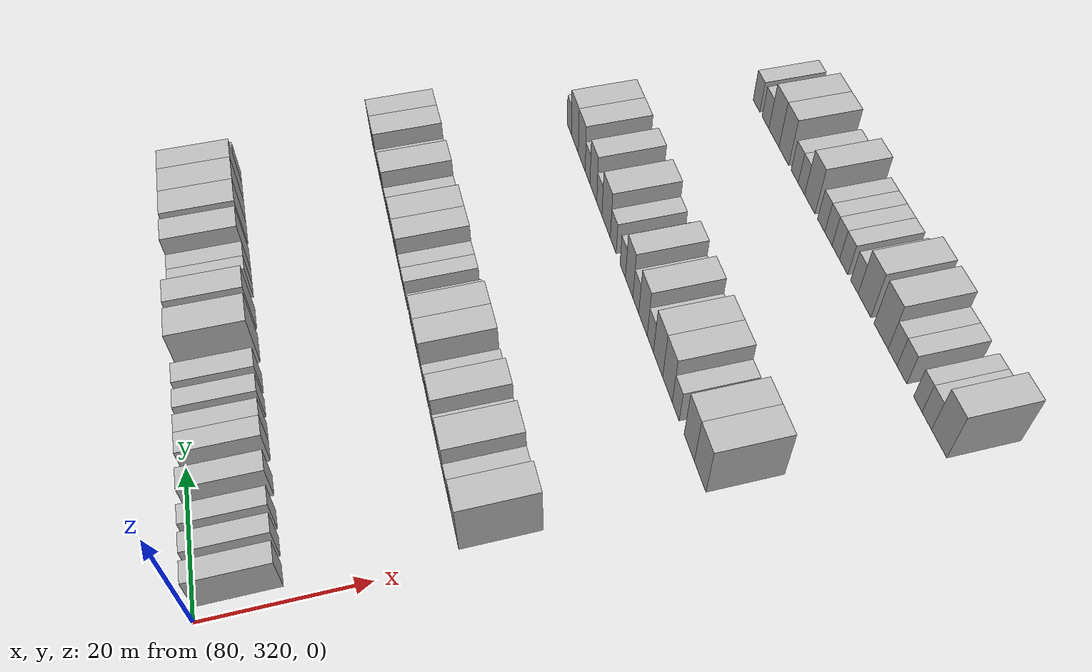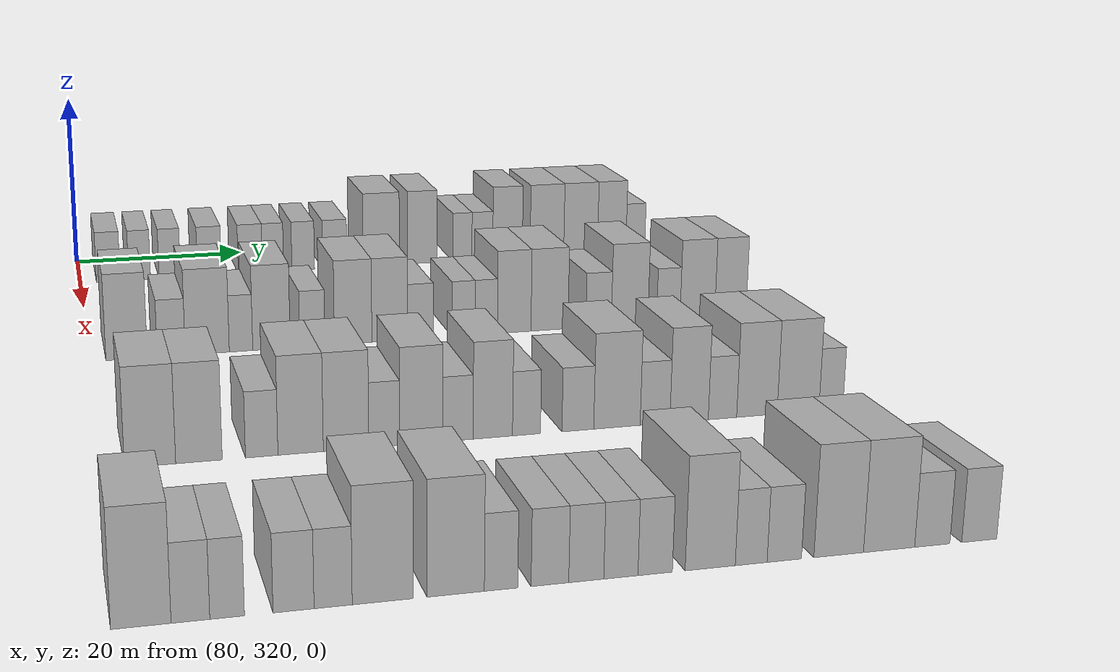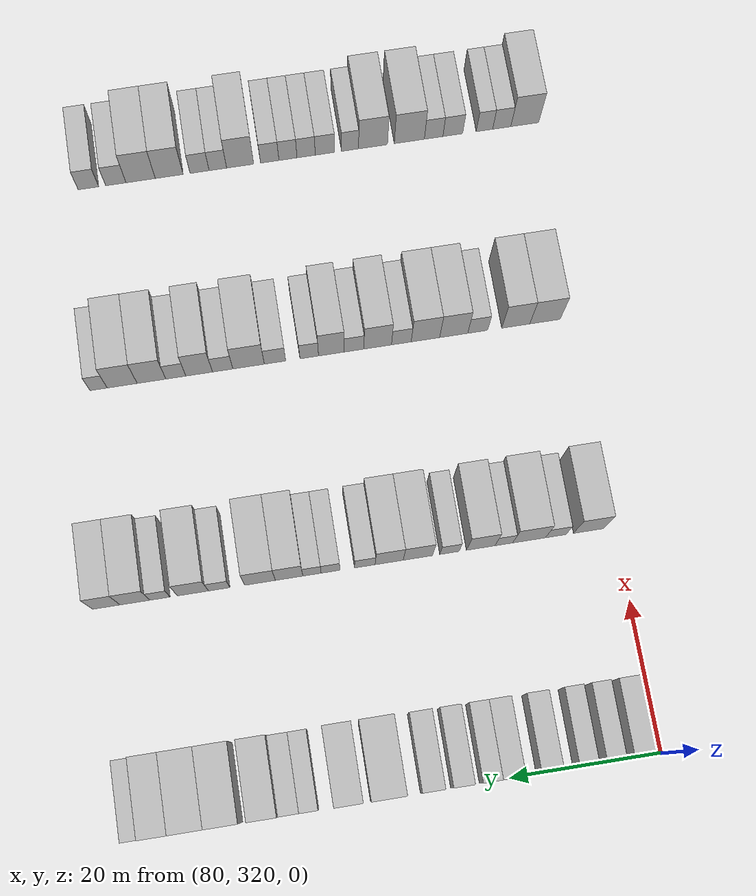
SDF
<sdf version="1.6">
 <world name="default">
  <model name="building_649">
   <static>1</static>
   <pose>85.0000 323.2457 0 0.000000 0.000000 0.000000</pose>
   <link name="link">
    <pose>0 0 3.00 0 0 0</pose>
    <collision name="collision"><geometry><box><size>10.0000 2.7500 6.0000</size></box></geometry></collision>
    <visual name="visual">
     <cast_shadows>0</cast_shadows>
     <geometry><box><size>10.0000 2.7500 6.0000</size></box></geometry>
     <material>
      <script>
       <uri>model://HANNAS_wall/materials/scripts</uri>
       <uri>model://HANNAS_wall/materials/textures</uri>
       <name>vrc/HANNAS_wall</name>
      </script>
     </material>
    </visual>
   </link>
  </model>
  <model name="building_650">
   <static>1</static>
   <pose>85.0000 326.8846 0 0.000000 0.000000 0.000000</pose>
   <link name="link">
    <pose>0 0 3.00 0 0 0</pose>
    <collision name="collision"><geometry><box><size>10.0000 2.5278 6.0000</size></box></geometry></collision>
    <visual name="visual">
     <cast_shadows>0</cast_shadows>
     <geometry><box><size>10.0000 2.5278 6.0000</size></box></geometry>
     <material>
      <script>
       <uri>model://HANNAS_wall/materials/scripts</uri>
       <uri>model://HANNAS_wall/materials/textures</uri>
       <name>vrc/HANNAS_wall</name>
      </script>
     </material>
    </visual>
   </link>
  </model>
  <model name="building_651">
   <static>1</static>
   <pose>85.0000 330.4048 0 0.000000 0.000000 0.000000</pose>
   <link name="link">
    <pose>0 0 3.00 0 0 0</pose>
    <collision name="collision"><geometry><box><size>10.0000 2.5127 6.0000</size></box></geometry></collision>
    <visual name="visual">
     <cast_shadows>0</cast_shadows>
     <geometry><box><size>10.0000 2.5127 6.0000</size></box></geometry>
     <material>
      <script>
       <uri>model://HANNAS_wall/materials/scripts</uri>
       <uri>model://HANNAS_wall/materials/textures</uri>
       <name>vrc/HANNAS_wall</name>
      </script>
     </material>
    </visual>
   </link>
  </model>
  <model name="building_652">
   <static>1</static>
   <pose>85.0000 335.0847 0 0.000000 0.000000 0.000000</pose>
   <link name="link">
    <pose>0 0 3.00 0 0 0</pose>
    <collision name="collision"><geometry><box><size>10.0000 2.8470 6.0000</size></box></geometry></collision>
    <visual name="visual">
     <cast_shadows>0</cast_shadows>
     <geometry><box><size>10.0000 2.8470 6.0000</size></box></geometry>
     <material>
      <script>
       <uri>model://HANNAS_wall/materials/scripts</uri>
       <uri>model://HANNAS_wall/materials/textures</uri>
       <name>vrc/HANNAS_wall</name>
      </script>
     </material>
    </visual>
   </link>
  </model>
  <model name="building_653">
   <static>1</static>
   <pose>85.0000 339.9533 0 0.000000 0.000000 0.000000</pose>
   <link name="link">
    <pose>0 0 3.00 0 0 0</pose>
    <collision name="collision"><geometry><box><size>10.0000 2.8903 6.0000</size></box></geometry></collision>
    <visual name="visual">
     <cast_shadows>0</cast_shadows>
     <geometry><box><size>10.0000 2.8903 6.0000</size></box></geometry>
     <material>
      <script>
       <uri>model://HANNAS_wall/materials/scripts</uri>
       <uri>model://HANNAS_wall/materials/textures</uri>
       <name>vrc/HANNAS_wall</name>
      </script>
     </material>
    </visual>
   </link>
  </model>
  <model name="building_654">
   <static>1</static>
   <pose>85.0000 342.6736 0 0.000000 0.000000 0.000000</pose>
   <link name="link">
    <pose>0 0 3.00 0 0 0</pose>
    <collision name="collision"><geometry><box><size>10.0000 2.5504 6.0000</size></box></geometry></collision>
    <visual name="visual">
     <cast_shadows>0</cast_shadows>
     <geometry><box><size>10.0000 2.5504 6.0000</size></box></geometry>
     <material>
      <script>
       <uri>model://HANNAS_wall/materials/scripts</uri>
       <uri>model://HANNAS_wall/materials/textures</uri>
       <name>vrc/HANNAS_wall</name>
      </script>
     </material>
    </visual>
   </link>
  </model>
  <model name="building_655">
   <static>1</static>
   <pose>85.0000 346.3205 0 0.000000 0.000000 0.000000</pose>
   <link name="link">
    <pose>0 0 3.00 0 0 0</pose>
    <collision name="collision"><geometry><box><size>10.0000 2.7432 6.0000</size></box></geometry></collision>
    <visual name="visual">
     <cast_shadows>0</cast_shadows>
     <geometry><box><size>10.0000 2.7432 6.0000</size></box></geometry>
     <material>
      <script>
       <uri>model://HANNAS_wall/materials/scripts</uri>
       <uri>model://HANNAS_wall/materials/textures</uri>
       <name>vrc/HANNAS_wall</name>
      </script>
     </material>
    </visual>
   </link>
  </model>
  <model name="building_656">
   <static>1</static>
   <pose>85.0000 350.1687 0 0.000000 0.000000 0.000000</pose>
   <link name="link">
    <pose>0 0 3.00 0 0 0</pose>
    <collision name="collision"><geometry><box><size>10.0000 2.9533 6.0000</size></box></geometry></collision>
    <visual name="visual">
     <cast_shadows>0</cast_shadows>
     <geometry><box><size>10.0000 2.9533 6.0000</size></box></geometry>
     <material>
      <script>
       <uri>model://HANNAS_wall/materials/scripts</uri>
       <uri>model://HANNAS_wall/materials/textures</uri>
       <name>vrc/HANNAS_wall</name>
      </script>
     </material>
    </visual>
   </link>
  </model>
  <model name="building_657">
   <static>1</static>
   <pose>85.0000 355.8907 0 0.000000 0.000000 0.000000</pose>
   <link name="link">
    <pose>0 0 4.50 0 0 0</pose>
    <collision name="collision"><geometry><box><size>10.0000 4.4907 9.0000</size></box></geometry></collision>
    <visual name="visual">
     <cast_shadows>0</cast_shadows>
     <geometry><box><size>10.0000 4.4907 9.0000</size></box></geometry>
     <material>
      <script>
       <uri>model://HANNAS_wall/materials/scripts</uri>
       <uri>model://HANNAS_wall/materials/textures</uri>
       <name>vrc/HANNAS_wall</name>
      </script>
     </material>
    </visual>
   </link>
  </model>
  <model name="building_658">
   <static>1</static>
   <pose>85.0000 360.9752 0 0.000000 0.000000 0.000000</pose>
   <link name="link">
    <pose>0 0 4.50 0 0 0</pose>
    <collision name="collision"><geometry><box><size>10.0000 3.6782 9.0000</size></box></geometry></collision>
    <visual name="visual">
     <cast_shadows>0</cast_shadows>
     <geometry><box><size>10.0000 3.6782 9.0000</size></box></geometry>
     <material>
      <script>
       <uri>model://HANNAS_wall/materials/scripts</uri>
       <uri>model://HANNAS_wall/materials/textures</uri>
       <name>vrc/HANNAS_wall</name>
      </script>
     </material>
    </visual>
   </link>
  </model>
  <model name="building_659">
   <static>1</static>
   <pose>85.0000 366.0225 0 0.000000 0.000000 0.000000</pose>
   <link name="link">
    <pose>0 0 3.00 0 0 0</pose>
    <collision name="collision"><geometry><box><size>10.0000 2.4164 6.0000</size></box></geometry></collision>
    <visual name="visual">
     <cast_shadows>0</cast_shadows>
     <geometry><box><size>10.0000 2.4164 6.0000</size></box></geometry>
     <material>
      <script>
       <uri>model://HANNAS_wall/materials/scripts</uri>
       <uri>model://HANNAS_wall/materials/textures</uri>
       <name>vrc/HANNAS_wall</name>
      </script>
     </material>
    </visual>
   </link>
  </model>
  <model name="building_660">
   <static>1</static>
   <pose>85.0000 368.5501 0 0.000000 0.000000 0.000000</pose>
   <link name="link">
    <pose>0 0 3.00 0 0 0</pose>
    <collision name="collision"><geometry><box><size>10.0000 2.6387 6.0000</size></box></geometry></collision>
    <visual name="visual">
     <cast_shadows>0</cast_shadows>
     <geometry><box><size>10.0000 2.6387 6.0000</size></box></geometry>
     <material>
      <script>
       <uri>model://HANNAS_wall/materials/scripts</uri>
       <uri>model://HANNAS_wall/materials/textures</uri>
       <name>vrc/HANNAS_wall</name>
      </script>
     </material>
    </visual>
   </link>
  </model>
  <model name="building_661">
   <static>1</static>
   <pose>85.0000 371.7570 0 0.000000 0.000000 0.000000</pose>
   <link name="link">
    <pose>0 0 4.50 0 0 0</pose>
    <collision name="collision"><geometry><box><size>10.0000 3.7751 9.0000</size></box></geometry></collision>
    <visual name="visual">
     <cast_shadows>0</cast_shadows>
     <geometry><box><size>10.0000 3.7751 9.0000</size></box></geometry>
     <material>
      <script>
       <uri>model://HANNAS_wall/materials/scripts</uri>
       <uri>model://HANNAS_wall/materials/textures</uri>
       <name>vrc/HANNAS_wall</name>
      </script>
     </material>
    </visual>
   </link>
  </model>
  <model name="building_662">
   <static>1</static>
   <pose>85.0000 376.8135 0 0.000000 0.000000 0.000000</pose>
   <link name="link">
    <pose>0 0 4.50 0 0 0</pose>
    <collision name="collision"><geometry><box><size>10.0000 4.3380 9.0000</size></box></geometry></collision>
    <visual name="visual">
     <cast_shadows>0</cast_shadows>
     <geometry><box><size>10.0000 4.3380 9.0000</size></box></geometry>
     <material>
      <script>
       <uri>model://HANNAS_wall/materials/scripts</uri>
       <uri>model://HANNAS_wall/materials/textures</uri>
       <name>vrc/HANNAS_wall</name>
      </script>
     </material>
    </visual>
   </link>
  </model>
  <model name="building_663">
   <static>1</static>
   <pose>85.0000 381.1816 0 0.000000 0.000000 0.000000</pose>
   <link name="link">
    <pose>0 0 4.50 0 0 0</pose>
    <collision name="collision"><geometry><box><size>10.0000 4.3983 9.0000</size></box></geometry></collision>
    <visual name="visual">
     <cast_shadows>0</cast_shadows>
     <geometry><box><size>10.0000 4.3983 9.0000</size></box></geometry>
     <material>
      <script>
       <uri>model://HANNAS_wall/materials/scripts</uri>
       <uri>model://HANNAS_wall/materials/textures</uri>
       <name>vrc/HANNAS_wall</name>
      </script>
     </material>
    </visual>
   </link>
  </model>
  <model name="building_664">
   <static>1</static>
   <pose>85.0000 385.2463 0 0.000000 0.000000 0.000000</pose>
   <link name="link">
    <pose>0 0 4.50 0 0 0</pose>
    <collision name="collision"><geometry><box><size>10.0000 3.7311 9.0000</size></box></geometry></collision>
    <visual name="visual">
     <cast_shadows>0</cast_shadows>
     <geometry><box><size>10.0000 3.7311 9.0000</size></box></geometry>
     <material>
      <script>
       <uri>model://HANNAS_wall/materials/scripts</uri>
       <uri>model://HANNAS_wall/materials/textures</uri>
       <name>vrc/HANNAS_wall</name>
      </script>
     </material>
    </visual>
   </link>
  </model>
  <model name="building_665">
   <static>1</static>
   <pose>85.0000 388.3572 0 0.000000 0.000000 0.000000</pose>
   <link name="link">
    <pose>0 0 3.00 0 0 0</pose>
    <collision name="collision"><geometry><box><size>10.0000 2.4906 6.0000</size></box></geometry></collision>
    <visual name="visual">
     <cast_shadows>0</cast_shadows>
     <geometry><box><size>10.0000 2.4906 6.0000</size></box></geometry>
     <material>
      <script>
       <uri>model://HANNAS_wall/materials/scripts</uri>
       <uri>model://HANNAS_wall/materials/textures</uri>
       <name>vrc/HANNAS_wall</name>
      </script>
     </material>
    </visual>
   </link>
  </model>
  <model name="building_879">
   <static>1</static>
   <pose>115.0000 323.5311 0 0.000000 0.000000 0.000000</pose>
   <link name="link">
    <pose>0 0 4.50 0 0 0</pose>
    <collision name="collision"><geometry><box><size>10.0000 4.1529 9.0000</size></box></geometry></collision>
    <visual name="visual">
     <cast_shadows>0</cast_shadows>
     <geometry><box><size>10.0000 4.1529 9.0000</size></box></geometry>
     <material>
      <script>
       <uri>model://HANNAS_wall/materials/scripts</uri>
       <uri>model://HANNAS_wall/materials/textures</uri>
       <name>vrc/HANNAS_wall</name>
      </script>
     </material>
    </visual>
   </link>
  </model>
  <model name="building_880">
   <static>1</static>
   <pose>115.0000 328.0258 0 0.000000 0.000000 0.000000</pose>
   <link name="link">
    <pose>0 0 3.00 0 0 0</pose>
    <collision name="collision"><geometry><box><size>10.0000 2.8366 6.0000</size></box></geometry></collision>
    <visual name="visual">
     <cast_shadows>0</cast_shadows>
     <geometry><box><size>10.0000 2.8366 6.0000</size></box></geometry>
     <material>
      <script>
       <uri>model://HANNAS_wall/materials/scripts</uri>
       <uri>model://HANNAS_wall/materials/textures</uri>
       <name>vrc/HANNAS_wall</name>
      </script>
     </material>
    </visual>
   </link>
  </model>
  <model name="building_881">
   <static>1</static>
   <pose>115.0000 331.6862 0 0.000000 0.000000 0.000000</pose>
   <link name="link">
    <pose>0 0 4.50 0 0 0</pose>
    <collision name="collision"><geometry><box><size>10.0000 4.4841 9.0000</size></box></geometry></collision>
    <visual name="visual">
     <cast_shadows>0</cast_shadows>
     <geometry><box><size>10.0000 4.4841 9.0000</size></box></geometry>
     <material>
      <script>
       <uri>model://HANNAS_wall/materials/scripts</uri>
       <uri>model://HANNAS_wall/materials/textures</uri>
       <name>vrc/HANNAS_wall</name>
      </script>
     </material>
    </visual>
   </link>
  </model>
  <model name="building_882">
   <static>1</static>
   <pose>115.0000 335.1351 0 0.000000 0.000000 0.000000</pose>
   <link name="link">
    <pose>0 0 3.00 0 0 0</pose>
    <collision name="collision"><geometry><box><size>10.0000 2.4136 6.0000</size></box></geometry></collision>
    <visual name="visual">
     <cast_shadows>0</cast_shadows>
     <geometry><box><size>10.0000 2.4136 6.0000</size></box></geometry>
     <material>
      <script>
       <uri>model://HANNAS_wall/materials/scripts</uri>
       <uri>model://HANNAS_wall/materials/textures</uri>
       <name>vrc/HANNAS_wall</name>
      </script>
     </material>
    </visual>
   </link>
  </model>
  <model name="building_883">
   <static>1</static>
   <pose>115.0000 338.2851 0 0.000000 0.000000 0.000000</pose>
   <link name="link">
    <pose>0 0 4.50 0 0 0</pose>
    <collision name="collision"><geometry><box><size>10.0000 3.8864 9.0000</size></box></geometry></collision>
    <visual name="visual">
     <cast_shadows>0</cast_shadows>
     <geometry><box><size>10.0000 3.8864 9.0000</size></box></geometry>
     <material>
      <script>
       <uri>model://HANNAS_wall/materials/scripts</uri>
       <uri>model://HANNAS_wall/materials/textures</uri>
       <name>vrc/HANNAS_wall</name>
      </script>
     </material>
    </visual>
   </link>
  </model>
  <model name="building_884">
   <static>1</static>
   <pose>115.0000 342.5435 0 0.000000 0.000000 0.000000</pose>
   <link name="link">
    <pose>0 0 3.00 0 0 0</pose>
    <collision name="collision"><geometry><box><size>10.0000 2.6305 6.0000</size></box></geometry></collision>
    <visual name="visual">
     <cast_shadows>0</cast_shadows>
     <geometry><box><size>10.0000 2.6305 6.0000</size></box></geometry>
     <material>
      <script>
       <uri>model://HANNAS_wall/materials/scripts</uri>
       <uri>model://HANNAS_wall/materials/textures</uri>
       <name>vrc/HANNAS_wall</name>
      </script>
     </material>
    </visual>
   </link>
  </model>
  <model name="building_885">
   <static>1</static>
   <pose>115.0000 346.8408 0 0.000000 0.000000 0.000000</pose>
   <link name="link">
    <pose>0 0 4.50 0 0 0</pose>
    <collision name="collision"><geometry><box><size>10.0000 3.9641 9.0000</size></box></geometry></collision>
    <visual name="visual">
     <cast_shadows>0</cast_shadows>
     <geometry><box><size>10.0000 3.9641 9.0000</size></box></geometry>
     <material>
      <script>
       <uri>model://HANNAS_wall/materials/scripts</uri>
       <uri>model://HANNAS_wall/materials/textures</uri>
       <name>vrc/HANNAS_wall</name>
      </script>
     </material>
    </visual>
   </link>
  </model>
  <model name="building_886">
   <static>1</static>
   <pose>115.0000 350.7256 0 0.000000 0.000000 0.000000</pose>
   <link name="link">
    <pose>0 0 4.50 0 0 0</pose>
    <collision name="collision"><geometry><box><size>10.0000 3.8054 9.0000</size></box></geometry></collision>
    <visual name="visual">
     <cast_shadows>0</cast_shadows>
     <geometry><box><size>10.0000 3.8054 9.0000</size></box></geometry>
     <material>
      <script>
       <uri>model://HANNAS_wall/materials/scripts</uri>
       <uri>model://HANNAS_wall/materials/textures</uri>
       <name>vrc/HANNAS_wall</name>
      </script>
     </material>
    </visual>
   </link>
  </model>
  <model name="building_887">
   <static>1</static>
   <pose>115.0000 354.0184 0 0.000000 0.000000 0.000000</pose>
   <link name="link">
    <pose>0 0 3.00 0 0 0</pose>
    <collision name="collision"><geometry><box><size>10.0000 2.7802 6.0000</size></box></geometry></collision>
    <visual name="visual">
     <cast_shadows>0</cast_shadows>
     <geometry><box><size>10.0000 2.7802 6.0000</size></box></geometry>
     <material>
      <script>
       <uri>model://HANNAS_wall/materials/scripts</uri>
       <uri>model://HANNAS_wall/materials/textures</uri>
       <name>vrc/HANNAS_wall</name>
      </script>
     </material>
    </visual>
   </link>
  </model>
  <model name="building_888">
   <static>1</static>
   <pose>115.0000 358.6678 0 0.000000 0.000000 0.000000</pose>
   <link name="link">
    <pose>0 0 3.00 0 0 0</pose>
    <collision name="collision"><geometry><box><size>10.0000 2.5187 6.0000</size></box></geometry></collision>
    <visual name="visual">
     <cast_shadows>0</cast_shadows>
     <geometry><box><size>10.0000 2.5187 6.0000</size></box></geometry>
     <material>
      <script>
       <uri>model://HANNAS_wall/materials/scripts</uri>
       <uri>model://HANNAS_wall/materials/textures</uri>
       <name>vrc/HANNAS_wall</name>
      </script>
     </material>
    </visual>
   </link>
  </model>
  <model name="building_889">
   <static>1</static>
   <pose>115.0000 361.1509 0 0.000000 0.000000 0.000000</pose>
   <link name="link">
    <pose>0 0 3.00 0 0 0</pose>
    <collision name="collision"><geometry><box><size>10.0000 2.4475 6.0000</size></box></geometry></collision>
    <visual name="visual">
     <cast_shadows>0</cast_shadows>
     <geometry><box><size>10.0000 2.4475 6.0000</size></box></geometry>
     <material>
      <script>
       <uri>model://HANNAS_wall/materials/scripts</uri>
       <uri>model://HANNAS_wall/materials/textures</uri>
       <name>vrc/HANNAS_wall</name>
      </script>
     </material>
    </visual>
   </link>
  </model>
  <model name="building_890">
   <static>1</static>
   <pose>115.0000 364.2268 0 0.000000 0.000000 0.000000</pose>
   <link name="link">
    <pose>0 0 4.50 0 0 0</pose>
    <collision name="collision"><geometry><box><size>10.0000 3.7043 9.0000</size></box></geometry></collision>
    <visual name="visual">
     <cast_shadows>0</cast_shadows>
     <geometry><box><size>10.0000 3.7043 9.0000</size></box></geometry>
     <material>
      <script>
       <uri>model://HANNAS_wall/materials/scripts</uri>
       <uri>model://HANNAS_wall/materials/textures</uri>
       <name>vrc/HANNAS_wall</name>
      </script>
     </material>
    </visual>
   </link>
  </model>
  <model name="building_891">
   <static>1</static>
   <pose>115.0000 368.1370 0 0.000000 0.000000 0.000000</pose>
   <link name="link">
    <pose>0 0 4.50 0 0 0</pose>
    <collision name="collision"><geometry><box><size>10.0000 4.1160 9.0000</size></box></geometry></collision>
    <visual name="visual">
     <cast_shadows>0</cast_shadows>
     <geometry><box><size>10.0000 4.1160 9.0000</size></box></geometry>
     <material>
      <script>
       <uri>model://HANNAS_wall/materials/scripts</uri>
       <uri>model://HANNAS_wall/materials/textures</uri>
       <name>vrc/HANNAS_wall</name>
      </script>
     </material>
    </visual>
   </link>
  </model>
  <model name="building_892">
   <static>1</static>
   <pose>115.0000 373.6321 0 0.000000 0.000000 0.000000</pose>
   <link name="link">
    <pose>0 0 3.00 0 0 0</pose>
    <collision name="collision"><geometry><box><size>10.0000 2.8743 6.0000</size></box></geometry></collision>
    <visual name="visual">
     <cast_shadows>0</cast_shadows>
     <geometry><box><size>10.0000 2.8743 6.0000</size></box></geometry>
     <material>
      <script>
       <uri>model://HANNAS_wall/materials/scripts</uri>
       <uri>model://HANNAS_wall/materials/textures</uri>
       <name>vrc/HANNAS_wall</name>
      </script>
     </material>
    </visual>
   </link>
  </model>
  <model name="building_893">
   <static>1</static>
   <pose>115.0000 377.1445 0 0.000000 0.000000 0.000000</pose>
   <link name="link">
    <pose>0 0 4.50 0 0 0</pose>
    <collision name="collision"><geometry><box><size>10.0000 4.1505 9.0000</size></box></geometry></collision>
    <visual name="visual">
     <cast_shadows>0</cast_shadows>
     <geometry><box><size>10.0000 4.1505 9.0000</size></box></geometry>
     <material>
      <script>
       <uri>model://HANNAS_wall/materials/scripts</uri>
       <uri>model://HANNAS_wall/materials/textures</uri>
       <name>vrc/HANNAS_wall</name>
      </script>
     </material>
    </visual>
   </link>
  </model>
  <model name="building_894">
   <static>1</static>
   <pose>115.0000 381.5603 0 0.000000 0.000000 0.000000</pose>
   <link name="link">
    <pose>0 0 3.00 0 0 0</pose>
    <collision name="collision"><geometry><box><size>10.0000 2.6812 6.0000</size></box></geometry></collision>
    <visual name="visual">
     <cast_shadows>0</cast_shadows>
     <geometry><box><size>10.0000 2.6812 6.0000</size></box></geometry>
     <material>
      <script>
       <uri>model://HANNAS_wall/materials/scripts</uri>
       <uri>model://HANNAS_wall/materials/textures</uri>
       <name>vrc/HANNAS_wall</name>
      </script>
     </material>
    </visual>
   </link>
  </model>
  <model name="building_895">
   <static>1</static>
   <pose>115.0000 384.9060 0 0.000000 0.000000 0.000000</pose>
   <link name="link">
    <pose>0 0 4.50 0 0 0</pose>
    <collision name="collision"><geometry><box><size>10.0000 4.0101 9.0000</size></box></geometry></collision>
    <visual name="visual">
     <cast_shadows>0</cast_shadows>
     <geometry><box><size>10.0000 4.0101 9.0000</size></box></geometry>
     <material>
      <script>
       <uri>model://HANNAS_wall/materials/scripts</uri>
       <uri>model://HANNAS_wall/materials/textures</uri>
       <name>vrc/HANNAS_wall</name>
      </script>
     </material>
    </visual>
   </link>
  </model>
  <model name="building_896">
   <static>1</static>
   <pose>115.0000 388.7379 0 0.000000 0.000000 0.000000</pose>
   <link name="link">
    <pose>0 0 4.50 0 0 0</pose>
    <collision name="collision"><geometry><box><size>10.0000 3.6538 9.0000</size></box></geometry></collision>
    <visual name="visual">
     <cast_shadows>0</cast_shadows>
     <geometry><box><size>10.0000 3.6538 9.0000</size></box></geometry>
     <material>
      <script>
       <uri>model://HANNAS_wall/materials/scripts</uri>
       <uri>model://HANNAS_wall/materials/textures</uri>
       <name>vrc/HANNAS_wall</name>
      </script>
     </material>
    </visual>
   </link>
  </model>
  <model name="building_1115">
   <static>1</static>
   <pose>145.0000 323.6698 0 0.000000 0.000000 0.000000</pose>
   <link name="link">
    <pose>0 0 4.50 0 0 0</pose>
    <collision name="collision"><geometry><box><size>10.0000 4.3352 9.0000</size></box></geometry></collision>
    <visual name="visual">
     <cast_shadows>0</cast_shadows>
     <geometry><box><size>10.0000 4.3352 9.0000</size></box></geometry>
     <material>
      <script>
       <uri>model://HANNAS_wall/materials/scripts</uri>
       <uri>model://HANNAS_wall/materials/textures</uri>
       <name>vrc/HANNAS_wall</name>
      </script>
     </material>
    </visual>
   </link>
  </model>
  <model name="building_1116">
   <static>1</static>
   <pose>145.0000 327.8257 0 0.000000 0.000000 0.000000</pose>
   <link name="link">
    <pose>0 0 4.50 0 0 0</pose>
    <collision name="collision"><geometry><box><size>10.0000 3.9766 9.0000</size></box></geometry></collision>
    <visual name="visual">
     <cast_shadows>0</cast_shadows>
     <geometry><box><size>10.0000 3.9766 9.0000</size></box></geometry>
     <material>
      <script>
       <uri>model://HANNAS_wall/materials/scripts</uri>
       <uri>model://HANNAS_wall/materials/textures</uri>
       <name>vrc/HANNAS_wall</name>
      </script>
     </material>
    </visual>
   </link>
  </model>
  <model name="building_1117">
   <static>1</static>
   <pose>145.0000 333.2253 0 0.000000 0.000000 0.000000</pose>
   <link name="link">
    <pose>0 0 3.00 0 0 0</pose>
    <collision name="collision"><geometry><box><size>10.0000 2.8224 6.0000</size></box></geometry></collision>
    <visual name="visual">
     <cast_shadows>0</cast_shadows>
     <geometry><box><size>10.0000 2.8224 6.0000</size></box></geometry>
     <material>
      <script>
       <uri>model://HANNAS_wall/materials/scripts</uri>
       <uri>model://HANNAS_wall/materials/textures</uri>
       <name>vrc/HANNAS_wall</name>
      </script>
     </material>
    </visual>
   </link>
  </model>
  <model name="building_1118">
   <static>1</static>
   <pose>145.0000 336.6261 0 0.000000 0.000000 0.000000</pose>
   <link name="link">
    <pose>0 0 4.50 0 0 0</pose>
    <collision name="collision"><geometry><box><size>10.0000 3.9792 9.0000</size></box></geometry></collision>
    <visual name="visual">
     <cast_shadows>0</cast_shadows>
     <geometry><box><size>10.0000 3.9792 9.0000</size></box></geometry>
     <material>
      <script>
       <uri>model://HANNAS_wall/materials/scripts</uri>
       <uri>model://HANNAS_wall/materials/textures</uri>
       <name>vrc/HANNAS_wall</name>
      </script>
     </material>
    </visual>
   </link>
  </model>
  <model name="building_1119">
   <static>1</static>
   <pose>145.0000 340.6313 0 0.000000 0.000000 0.000000</pose>
   <link name="link">
    <pose>0 0 4.50 0 0 0</pose>
    <collision name="collision"><geometry><box><size>10.0000 4.0312 9.0000</size></box></geometry></collision>
    <visual name="visual">
     <cast_shadows>0</cast_shadows>
     <geometry><box><size>10.0000 4.0312 9.0000</size></box></geometry>
     <material>
      <script>
       <uri>model://HANNAS_wall/materials/scripts</uri>
       <uri>model://HANNAS_wall/materials/textures</uri>
       <name>vrc/HANNAS_wall</name>
      </script>
     </material>
    </visual>
   </link>
  </model>
  <model name="building_1120">
   <static>1</static>
   <pose>145.0000 344.0322 0 0.000000 0.000000 0.000000</pose>
   <link name="link">
    <pose>0 0 3.00 0 0 0</pose>
    <collision name="collision"><geometry><box><size>10.0000 2.7708 6.0000</size></box></geometry></collision>
    <visual name="visual">
     <cast_shadows>0</cast_shadows>
     <geometry><box><size>10.0000 2.7708 6.0000</size></box></geometry>
     <material>
      <script>
       <uri>model://HANNAS_wall/materials/scripts</uri>
       <uri>model://HANNAS_wall/materials/textures</uri>
       <name>vrc/HANNAS_wall</name>
      </script>
     </material>
    </visual>
   </link>
  </model>
  <model name="building_1121">
   <static>1</static>
   <pose>145.0000 347.3667 0 0.000000 0.000000 0.000000</pose>
   <link name="link">
    <pose>0 0 4.50 0 0 0</pose>
    <collision name="collision"><geometry><box><size>10.0000 3.8982 9.0000</size></box></geometry></collision>
    <visual name="visual">
     <cast_shadows>0</cast_shadows>
     <geometry><box><size>10.0000 3.8982 9.0000</size></box></geometry>
     <material>
      <script>
       <uri>model://HANNAS_wall/materials/scripts</uri>
       <uri>model://HANNAS_wall/materials/textures</uri>
       <name>vrc/HANNAS_wall</name>
      </script>
     </material>
    </visual>
   </link>
  </model>
  <model name="building_1122">
   <static>1</static>
   <pose>145.0000 350.6914 0 0.000000 0.000000 0.000000</pose>
   <link name="link">
    <pose>0 0 3.00 0 0 0</pose>
    <collision name="collision"><geometry><box><size>10.0000 2.7511 6.0000</size></box></geometry></collision>
    <visual name="visual">
     <cast_shadows>0</cast_shadows>
     <geometry><box><size>10.0000 2.7511 6.0000</size></box></geometry>
     <material>
      <script>
       <uri>model://HANNAS_wall/materials/scripts</uri>
       <uri>model://HANNAS_wall/materials/textures</uri>
       <name>vrc/HANNAS_wall</name>
      </script>
     </material>
    </visual>
   </link>
  </model>
  <model name="building_1123">
   <static>1</static>
   <pose>145.0000 353.8787 0 0.000000 0.000000 0.000000</pose>
   <link name="link">
    <pose>0 0 4.50 0 0 0</pose>
    <collision name="collision"><geometry><box><size>10.0000 3.6236 9.0000</size></box></geometry></collision>
    <visual name="visual">
     <cast_shadows>0</cast_shadows>
     <geometry><box><size>10.0000 3.6236 9.0000</size></box></geometry>
     <material>
      <script>
       <uri>model://HANNAS_wall/materials/scripts</uri>
       <uri>model://HANNAS_wall/materials/textures</uri>
       <name>vrc/HANNAS_wall</name>
      </script>
     </material>
    </visual>
   </link>
  </model>
  <model name="building_1124">
   <static>1</static>
   <pose>145.0000 356.9905 0 0.000000 0.000000 0.000000</pose>
   <link name="link">
    <pose>0 0 3.00 0 0 0</pose>
    <collision name="collision"><geometry><box><size>10.0000 2.5999 6.0000</size></box></geometry></collision>
    <visual name="visual">
     <cast_shadows>0</cast_shadows>
     <geometry><box><size>10.0000 2.5999 6.0000</size></box></geometry>
     <material>
      <script>
       <uri>model://HANNAS_wall/materials/scripts</uri>
       <uri>model://HANNAS_wall/materials/textures</uri>
       <name>vrc/HANNAS_wall</name>
      </script>
     </material>
    </visual>
   </link>
  </model>
  <model name="building_1125">
   <static>1</static>
   <pose>145.0000 361.7844 0 0.000000 0.000000 0.000000</pose>
   <link name="link">
    <pose>0 0 3.00 0 0 0</pose>
    <collision name="collision"><geometry><box><size>10.0000 2.9879 6.0000</size></box></geometry></collision>
    <visual name="visual">
     <cast_shadows>0</cast_shadows>
     <geometry><box><size>10.0000 2.9879 6.0000</size></box></geometry>
     <material>
      <script>
       <uri>model://HANNAS_wall/materials/scripts</uri>
       <uri>model://HANNAS_wall/materials/textures</uri>
       <name>vrc/HANNAS_wall</name>
      </script>
     </material>
    </visual>
   </link>
  </model>
  <model name="building_1126">
   <static>1</static>
   <pose>145.0000 365.4854 0 0.000000 0.000000 0.000000</pose>
   <link name="link">
    <pose>0 0 4.50 0 0 0</pose>
    <collision name="collision"><geometry><box><size>10.0000 4.4142 9.0000</size></box></geometry></collision>
    <visual name="visual">
     <cast_shadows>0</cast_shadows>
     <geometry><box><size>10.0000 4.4142 9.0000</size></box></geometry>
     <material>
      <script>
       <uri>model://HANNAS_wall/materials/scripts</uri>
       <uri>model://HANNAS_wall/materials/textures</uri>
       <name>vrc/HANNAS_wall</name>
      </script>
     </material>
    </visual>
   </link>
  </model>
  <model name="building_1127">
   <static>1</static>
   <pose>145.0000 369.1195 0 0.000000 0.000000 0.000000</pose>
   <link name="link">
    <pose>0 0 3.00 0 0 0</pose>
    <collision name="collision"><geometry><box><size>10.0000 2.8540 6.0000</size></box></geometry></collision>
    <visual name="visual">
     <cast_shadows>0</cast_shadows>
     <geometry><box><size>10.0000 2.8540 6.0000</size></box></geometry>
     <material>
      <script>
       <uri>model://HANNAS_wall/materials/scripts</uri>
       <uri>model://HANNAS_wall/materials/textures</uri>
       <name>vrc/HANNAS_wall</name>
      </script>
     </material>
    </visual>
   </link>
  </model>
  <model name="building_1128">
   <static>1</static>
   <pose>145.0000 372.4057 0 0.000000 0.000000 0.000000</pose>
   <link name="link">
    <pose>0 0 4.50 0 0 0</pose>
    <collision name="collision"><geometry><box><size>10.0000 3.7183 9.0000</size></box></geometry></collision>
    <visual name="visual">
     <cast_shadows>0</cast_shadows>
     <geometry><box><size>10.0000 3.7183 9.0000</size></box></geometry>
     <material>
      <script>
       <uri>model://HANNAS_wall/materials/scripts</uri>
       <uri>model://HANNAS_wall/materials/textures</uri>
       <name>vrc/HANNAS_wall</name>
      </script>
     </material>
    </visual>
   </link>
  </model>
  <model name="building_1129">
   <static>1</static>
   <pose>145.0000 375.6525 0 0.000000 0.000000 0.000000</pose>
   <link name="link">
    <pose>0 0 3.00 0 0 0</pose>
    <collision name="collision"><geometry><box><size>10.0000 2.7753 6.0000</size></box></geometry></collision>
    <visual name="visual">
     <cast_shadows>0</cast_shadows>
     <geometry><box><size>10.0000 2.7753 6.0000</size></box></geometry>
     <material>
      <script>
       <uri>model://HANNAS_wall/materials/scripts</uri>
       <uri>model://HANNAS_wall/materials/textures</uri>
       <name>vrc/HANNAS_wall</name>
      </script>
     </material>
    </visual>
   </link>
  </model>
  <model name="building_1130">
   <static>1</static>
   <pose>145.0000 379.0324 0 0.000000 0.000000 0.000000</pose>
   <link name="link">
    <pose>0 0 4.50 0 0 0</pose>
    <collision name="collision"><geometry><box><size>10.0000 3.9845 9.0000</size></box></geometry></collision>
    <visual name="visual">
     <cast_shadows>0</cast_shadows>
     <geometry><box><size>10.0000 3.9845 9.0000</size></box></geometry>
     <material>
      <script>
       <uri>model://HANNAS_wall/materials/scripts</uri>
       <uri>model://HANNAS_wall/materials/textures</uri>
       <name>vrc/HANNAS_wall</name>
      </script>
     </material>
    </visual>
   </link>
  </model>
  <model name="building_1131">
   <static>1</static>
   <pose>145.0000 383.1090 0 0.000000 0.000000 0.000000</pose>
   <link name="link">
    <pose>0 0 4.50 0 0 0</pose>
    <collision name="collision"><geometry><box><size>10.0000 4.1687 9.0000</size></box></geometry></collision>
    <visual name="visual">
     <cast_shadows>0</cast_shadows>
     <geometry><box><size>10.0000 4.1687 9.0000</size></box></geometry>
     <material>
      <script>
       <uri>model://HANNAS_wall/materials/scripts</uri>
       <uri>model://HANNAS_wall/materials/textures</uri>
       <name>vrc/HANNAS_wall</name>
      </script>
     </material>
    </visual>
   </link>
  </model>
  <model name="building_1132">
   <static>1</static>
   <pose>145.0000 386.3937 0 0.000000 0.000000 0.000000</pose>
   <link name="link">
    <pose>0 0 3.00 0 0 0</pose>
    <collision name="collision"><geometry><box><size>10.0000 2.4008 6.0000</size></box></geometry></collision>
    <visual name="visual">
     <cast_shadows>0</cast_shadows>
     <geometry><box><size>10.0000 2.4008 6.0000</size></box></geometry>
     <material>
      <script>
       <uri>model://HANNAS_wall/materials/scripts</uri>
       <uri>model://HANNAS_wall/materials/textures</uri>
       <name>vrc/HANNAS_wall</name>
      </script>
     </material>
    </visual>
   </link>
  </model>
  <model name="building_1336">
   <static>1</static>
   <pose>175.0000 320.8298 0 0.000000 0.000000 0.000000</pose>
   <link name="link">
    <pose>0 0 4.50 0 0 0</pose>
    <collision name="collision"><geometry><box><size>10.0000 4.1281 9.0000</size></box></geometry></collision>
    <visual name="visual">
     <cast_shadows>0</cast_shadows>
     <geometry><box><size>10.0000 4.1281 9.0000</size></box></geometry>
     <material>
      <script>
       <uri>model://HANNAS_wall/materials/scripts</uri>
       <uri>model://HANNAS_wall/materials/textures</uri>
       <name>vrc/HANNAS_wall</name>
      </script>
     </material>
    </visual>
   </link>
  </model>
  <model name="building_1337">
   <static>1</static>
   <pose>175.0000 324.2282 0 0.000000 0.000000 0.000000</pose>
   <link name="link">
    <pose>0 0 3.00 0 0 0</pose>
    <collision name="collision"><geometry><box><size>10.0000 2.6687 6.0000</size></box></geometry></collision>
    <visual name="visual">
     <cast_shadows>0</cast_shadows>
     <geometry><box><size>10.0000 2.6687 6.0000</size></box></geometry>
     <material>
      <script>
       <uri>model://HANNAS_wall/materials/scripts</uri>
       <uri>model://HANNAS_wall/materials/textures</uri>
       <name>vrc/HANNAS_wall</name>
      </script>
     </material>
    </visual>
   </link>
  </model>
  <model name="building_1338">
   <static>1</static>
   <pose>175.0000 326.7690 0 0.000000 0.000000 0.000000</pose>
   <link name="link">
    <pose>0 0 3.00 0 0 0</pose>
    <collision name="collision"><geometry><box><size>10.0000 2.4129 6.0000</size></box></geometry></collision>
    <visual name="visual">
     <cast_shadows>0</cast_shadows>
     <geometry><box><size>10.0000 2.4129 6.0000</size></box></geometry>
     <material>
      <script>
       <uri>model://HANNAS_wall/materials/scripts</uri>
       <uri>model://HANNAS_wall/materials/textures</uri>
       <name>vrc/HANNAS_wall</name>
      </script>
     </material>
    </visual>
   </link>
  </model>
  <model name="building_1339">
   <static>1</static>
   <pose>175.0000 331.4269 0 0.000000 0.000000 0.000000</pose>
   <link name="link">
    <pose>0 0 3.00 0 0 0</pose>
    <collision name="collision"><geometry><box><size>10.0000 2.9030 6.0000</size></box></geometry></collision>
    <visual name="visual">
     <cast_shadows>0</cast_shadows>
     <geometry><box><size>10.0000 2.9030 6.0000</size></box></geometry>
     <material>
      <script>
       <uri>model://HANNAS_wall/materials/scripts</uri>
       <uri>model://HANNAS_wall/materials/textures</uri>
       <name>vrc/HANNAS_wall</name>
      </script>
     </material>
    </visual>
   </link>
  </model>
  <model name="building_1340">
   <static>1</static>
   <pose>175.0000 334.2409 0 0.000000 0.000000 0.000000</pose>
   <link name="link">
    <pose>0 0 3.00 0 0 0</pose>
    <collision name="collision"><geometry><box><size>10.0000 2.7250 6.0000</size></box></geometry></collision>
    <visual name="visual">
     <cast_shadows>0</cast_shadows>
     <geometry><box><size>10.0000 2.7250 6.0000</size></box></geometry>
     <material>
      <script>
       <uri>model://HANNAS_wall/materials/scripts</uri>
       <uri>model://HANNAS_wall/materials/textures</uri>
       <name>vrc/HANNAS_wall</name>
      </script>
     </material>
    </visual>
   </link>
  </model>
  <model name="building_1341">
   <static>1</static>
   <pose>175.0000 337.8101 0 0.000000 0.000000 0.000000</pose>
   <link name="link">
    <pose>0 0 4.50 0 0 0</pose>
    <collision name="collision"><geometry><box><size>10.0000 4.4133 9.0000</size></box></geometry></collision>
    <visual name="visual">
     <cast_shadows>0</cast_shadows>
     <geometry><box><size>10.0000 4.4133 9.0000</size></box></geometry>
     <material>
      <script>
       <uri>model://HANNAS_wall/materials/scripts</uri>
       <uri>model://HANNAS_wall/materials/textures</uri>
       <name>vrc/HANNAS_wall</name>
      </script>
     </material>
    </visual>
   </link>
  </model>
  <model name="building_1342">
   <static>1</static>
   <pose>175.0000 343.1308 0 0.000000 0.000000 0.000000</pose>
   <link name="link">
    <pose>0 0 4.50 0 0 0</pose>
    <collision name="collision"><geometry><box><size>10.0000 4.2281 9.0000</size></box></geometry></collision>
    <visual name="visual">
     <cast_shadows>0</cast_shadows>
     <geometry><box><size>10.0000 4.2281 9.0000</size></box></geometry>
     <material>
      <script>
       <uri>model://HANNAS_wall/materials/scripts</uri>
       <uri>model://HANNAS_wall/materials/textures</uri>
       <name>vrc/HANNAS_wall</name>
      </script>
     </material>
    </visual>
   </link>
  </model>
  <model name="building_1343">
   <static>1</static>
   <pose>175.0000 346.4886 0 0.000000 0.000000 0.000000</pose>
   <link name="link">
    <pose>0 0 3.00 0 0 0</pose>
    <collision name="collision"><geometry><box><size>10.0000 2.4875 6.0000</size></box></geometry></collision>
    <visual name="visual">
     <cast_shadows>0</cast_shadows>
     <geometry><box><size>10.0000 2.4875 6.0000</size></box></geometry>
     <material>
      <script>
       <uri>model://HANNAS_wall/materials/scripts</uri>
       <uri>model://HANNAS_wall/materials/textures</uri>
       <name>vrc/HANNAS_wall</name>
      </script>
     </material>
    </visual>
   </link>
  </model>
  <model name="building_1344">
   <static>1</static>
   <pose>175.0000 350.1536 0 0.000000 0.000000 0.000000</pose>
   <link name="link">
    <pose>0 0 3.00 0 0 0</pose>
    <collision name="collision"><geometry><box><size>10.0000 2.8425 6.0000</size></box></geometry></collision>
    <visual name="visual">
     <cast_shadows>0</cast_shadows>
     <geometry><box><size>10.0000 2.8425 6.0000</size></box></geometry>
     <material>
      <script>
       <uri>model://HANNAS_wall/materials/scripts</uri>
       <uri>model://HANNAS_wall/materials/textures</uri>
       <name>vrc/HANNAS_wall</name>
      </script>
     </material>
    </visual>
   </link>
  </model>
  <model name="building_1345">
   <static>1</static>
   <pose>175.0000 352.9083 0 0.000000 0.000000 0.000000</pose>
   <link name="link">
    <pose>0 0 3.00 0 0 0</pose>
    <collision name="collision"><geometry><box><size>10.0000 2.6668 6.0000</size></box></geometry></collision>
    <visual name="visual">
     <cast_shadows>0</cast_shadows>
     <geometry><box><size>10.0000 2.6668 6.0000</size></box></geometry>
     <material>
      <script>
       <uri>model://HANNAS_wall/materials/scripts</uri>
       <uri>model://HANNAS_wall/materials/textures</uri>
       <name>vrc/HANNAS_wall</name>
      </script>
     </material>
    </visual>
   </link>
  </model>
  <model name="building_1346">
   <static>1</static>
   <pose>175.0000 355.5569 0 0.000000 0.000000 0.000000</pose>
   <link name="link">
    <pose>0 0 3.00 0 0 0</pose>
    <collision name="collision"><geometry><box><size>10.0000 2.6304 6.0000</size></box></geometry></collision>
    <visual name="visual">
     <cast_shadows>0</cast_shadows>
     <geometry><box><size>10.0000 2.6304 6.0000</size></box></geometry>
     <material>
      <script>
       <uri>model://HANNAS_wall/materials/scripts</uri>
       <uri>model://HANNAS_wall/materials/textures</uri>
       <name>vrc/HANNAS_wall</name>
      </script>
     </material>
    </visual>
   </link>
  </model>
  <model name="building_1347">
   <static>1</static>
   <pose>175.0000 358.2063 0 0.000000 0.000000 0.000000</pose>
   <link name="link">
    <pose>0 0 3.00 0 0 0</pose>
    <collision name="collision"><geometry><box><size>10.0000 2.6685 6.0000</size></box></geometry></collision>
    <visual name="visual">
     <cast_shadows>0</cast_shadows>
     <geometry><box><size>10.0000 2.6685 6.0000</size></box></geometry>
     <material>
      <script>
       <uri>model://HANNAS_wall/materials/scripts</uri>
       <uri>model://HANNAS_wall/materials/textures</uri>
       <name>vrc/HANNAS_wall</name>
      </script>
     </material>
    </visual>
   </link>
  </model>
  <model name="building_1348">
   <static>1</static>
   <pose>175.0000 362.5122 0 0.000000 0.000000 0.000000</pose>
   <link name="link">
    <pose>0 0 4.50 0 0 0</pose>
    <collision name="collision"><geometry><box><size>10.0000 3.9432 9.0000</size></box></geometry></collision>
    <visual name="visual">
     <cast_shadows>0</cast_shadows>
     <geometry><box><size>10.0000 3.9432 9.0000</size></box></geometry>
     <material>
      <script>
       <uri>model://HANNAS_wall/materials/scripts</uri>
       <uri>model://HANNAS_wall/materials/textures</uri>
       <name>vrc/HANNAS_wall</name>
      </script>
     </material>
    </visual>
   </link>
  </model>
  <model name="building_1349">
   <static>1</static>
   <pose>175.0000 365.7516 0 0.000000 0.000000 0.000000</pose>
   <link name="link">
    <pose>0 0 3.00 0 0 0</pose>
    <collision name="collision"><geometry><box><size>10.0000 2.5357 6.0000</size></box></geometry></collision>
    <visual name="visual">
     <cast_shadows>0</cast_shadows>
     <geometry><box><size>10.0000 2.5357 6.0000</size></box></geometry>
     <material>
      <script>
       <uri>model://HANNAS_wall/materials/scripts</uri>
       <uri>model://HANNAS_wall/materials/textures</uri>
       <name>vrc/HANNAS_wall</name>
      </script>
     </material>
    </visual>
   </link>
  </model>
  <model name="building_1350">
   <static>1</static>
   <pose>175.0000 368.3990 0 0.000000 0.000000 0.000000</pose>
   <link name="link">
    <pose>0 0 3.00 0 0 0</pose>
    <collision name="collision"><geometry><box><size>10.0000 2.7590 6.0000</size></box></geometry></collision>
    <visual name="visual">
     <cast_shadows>0</cast_shadows>
     <geometry><box><size>10.0000 2.7590 6.0000</size></box></geometry>
     <material>
      <script>
       <uri>model://HANNAS_wall/materials/scripts</uri>
       <uri>model://HANNAS_wall/materials/textures</uri>
       <name>vrc/HANNAS_wall</name>
      </script>
     </material>
    </visual>
   </link>
  </model>
  <model name="building_1351">
   <static>1</static>
   <pose>175.0000 372.7993 0 0.000000 0.000000 0.000000</pose>
   <link name="link">
    <pose>0 0 4.50 0 0 0</pose>
    <collision name="collision"><geometry><box><size>10.0000 4.0415 9.0000</size></box></geometry></collision>
    <visual name="visual">
     <cast_shadows>0</cast_shadows>
     <geometry><box><size>10.0000 4.0415 9.0000</size></box></geometry>
     <material>
      <script>
       <uri>model://HANNAS_wall/materials/scripts</uri>
       <uri>model://HANNAS_wall/materials/textures</uri>
       <name>vrc/HANNAS_wall</name>
      </script>
     </material>
    </visual>
   </link>
  </model>
  <model name="building_1352">
   <static>1</static>
   <pose>175.0000 376.9324 0 0.000000 0.000000 0.000000</pose>
   <link name="link">
    <pose>0 0 4.50 0 0 0</pose>
    <collision name="collision"><geometry><box><size>10.0000 4.2247 9.0000</size></box></geometry></collision>
    <visual name="visual">
     <cast_shadows>0</cast_shadows>
     <geometry><box><size>10.0000 4.2247 9.0000</size></box></geometry>
     <material>
      <script>
       <uri>model://HANNAS_wall/materials/scripts</uri>
       <uri>model://HANNAS_wall/materials/textures</uri>
       <name>vrc/HANNAS_wall</name>
      </script>
     </material>
    </visual>
   </link>
  </model>
  <model name="building_1353">
   <static>1</static>
   <pose>175.0000 380.5140 0 0.000000 0.000000 0.000000</pose>
   <link name="link">
    <pose>0 0 3.00 0 0 0</pose>
    <collision name="collision"><geometry><box><size>10.0000 2.9385 6.0000</size></box></geometry></collision>
    <visual name="visual">
     <cast_shadows>0</cast_shadows>
     <geometry><box><size>10.0000 2.9385 6.0000</size></box></geometry>
     <material>
      <script>
       <uri>model://HANNAS_wall/materials/scripts</uri>
       <uri>model://HANNAS_wall/materials/textures</uri>
       <name>vrc/HANNAS_wall</name>
      </script>
     </material>
    </visual>
   </link>
  </model>
  <model name="building_1354">
   <static>1</static>
   <pose>175.0000 384.4638 0 0.000000 0.000000 0.000000</pose>
   <link name="link">
    <pose>0 0 3.00 0 0 0</pose>
    <collision name="collision"><geometry><box><size>10.0000 2.9609 6.0000</size></box></geometry></collision>
    <visual name="visual">
     <cast_shadows>0</cast_shadows>
     <geometry><box><size>10.0000 2.9609 6.0000</size></box></geometry>
     <material>
      <script>
       <uri>model://HANNAS_wall/materials/scripts</uri>
       <uri>model://HANNAS_wall/materials/textures</uri>
       <name>vrc/HANNAS_wall</name>
      </script>
     </material>
    </visual>
   </link>
  </model>
 </world>
</sdf>
